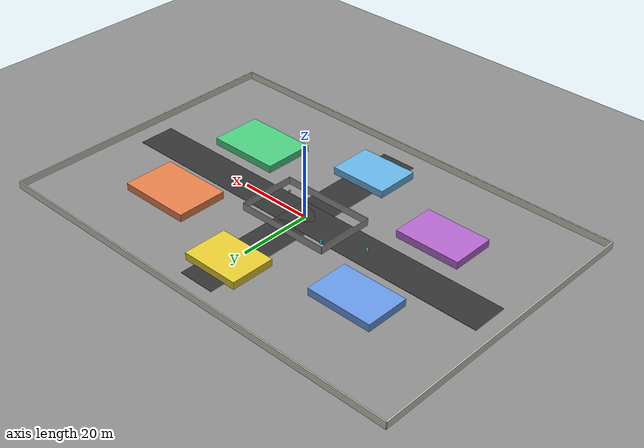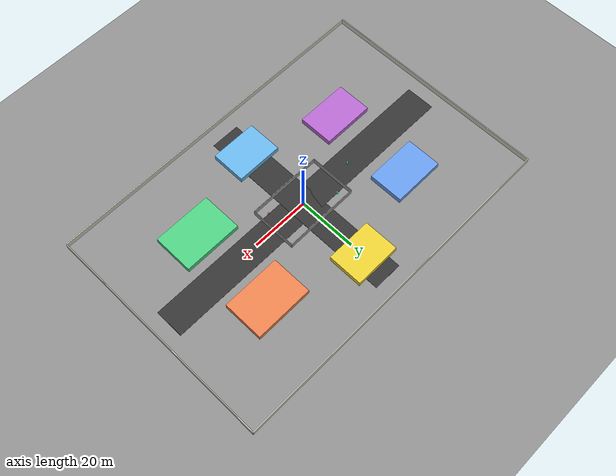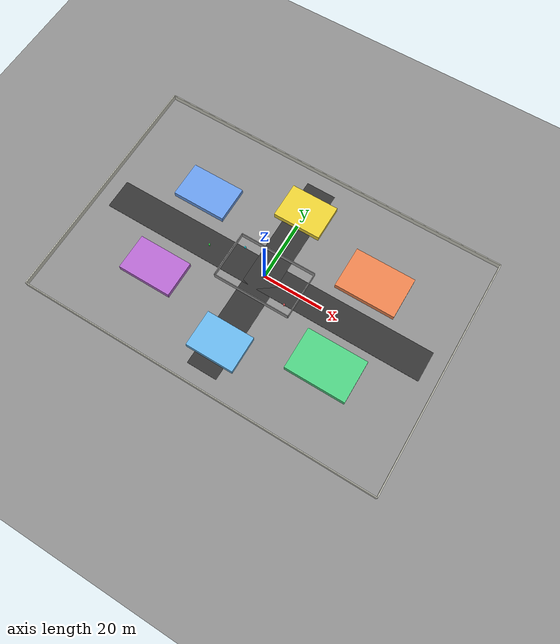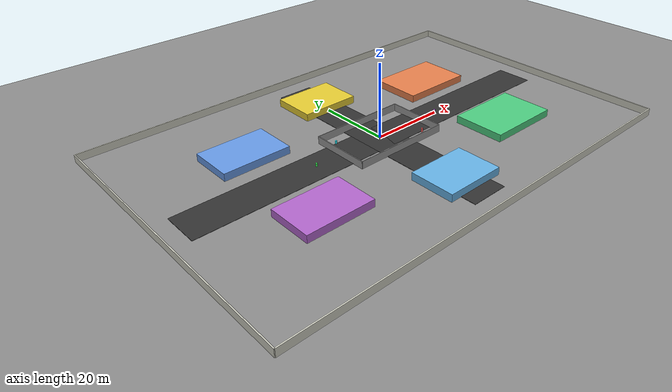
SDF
<?xml version="1.0" ?>
<sdf version="1.6">
  <world name="institute_city">
    <light name="sun" type="directional">
      <pose>0 0 20 0 0 0</pose>
      <diffuse>1 1 1 1</diffuse>
      <specular>0.2 0.2 0.2 1</specular>
      <direction>-0.4 0.1 -1</direction>
    </light>

    <model name="ground_plane">
      <static>true</static>
      <link name="link">
        <collision name="collision">
          <geometry>
            <plane>
              <normal>0 0 1</normal>
              <size>200 200</size>
            </plane>
          </geometry>
        </collision>
        <visual name="visual">
          <geometry>
            <plane>
              <normal>0 0 1</normal>
              <size>200 200</size>
            </plane>
          </geometry>
          <material>
            <ambient>0.55 0.55 0.55 1</ambient>
            <diffuse>0.55 0.55 0.55 1</diffuse>
            <specular>0.1 0.1 0.1 1</specular>
          </material>
        </visual>
      </link>
    </model>

    <!-- Perimeter walls -->
    <model name="perimeter_north">
      <static>true</static>
      <link name="link">
        <pose>0 40 1 0 0 0</pose>
        <collision name="collision">
          <geometry>
            <box>
              <size>120 0.3 2</size>
            </box>
          </geometry>
        </collision>
        <visual name="visual">
          <geometry>
            <box>
              <size>120 0.3 2</size>
            </box>
          </geometry>
          <material>
            <ambient>0.8 0.8 0.75 1</ambient>
            <diffuse>0.8 0.8 0.75 1</diffuse>
            <specular>0.1 0.1 0.1 1</specular>
          </material>
        </visual>
      </link>
    </model>

    <model name="perimeter_south">
      <static>true</static>
      <link name="link">
        <pose>0 -40 1 0 0 0</pose>
        <collision name="collision">
          <geometry>
            <box>
              <size>120 0.3 2</size>
            </box>
          </geometry>
        </collision>
        <visual name="visual">
          <geometry>
            <box>
              <size>120 0.3 2</size>
            </box>
          </geometry>
          <material>
            <ambient>0.8 0.8 0.75 1</ambient>
            <diffuse>0.8 0.8 0.75 1</diffuse>
            <specular>0.1 0.1 0.1 1</specular>
          </material>
        </visual>
      </link>
    </model>

    <model name="perimeter_west">
      <static>true</static>
      <link name="link">
        <pose>-60 0 1 0 0 0</pose>
        <collision name="collision">
          <geometry>
            <box>
              <size>0.3 80 2</size>
            </box>
          </geometry>
        </collision>
        <visual name="visual">
          <geometry>
            <box>
              <size>0.3 80 2</size>
            </box>
          </geometry>
          <material>
            <ambient>0.8 0.8 0.75 1</ambient>
            <diffuse>0.8 0.8 0.75 1</diffuse>
            <specular>0.1 0.1 0.1 1</specular>
          </material>
        </visual>
      </link>
    </model>

    <model name="perimeter_east">
      <static>true</static>
      <link name="link">
        <pose>60 0 1 0 0 0</pose>
        <collision name="collision">
          <geometry>
            <box>
              <size>0.3 80 2</size>
            </box>
          </geometry>
        </collision>
        <visual name="visual">
          <geometry>
            <box>
              <size>0.3 80 2</size>
            </box>
          </geometry>
          <material>
            <ambient>0.8 0.8 0.75 1</ambient>
            <diffuse>0.8 0.8 0.75 1</diffuse>
            <specular>0.1 0.1 0.1 1</specular>
          </material>
        </visual>
      </link>
    </model>

    <!-- Main roads (corridors) -->
    <model name="road_ns_center">
      <static>true</static>
      <link name="link">
        <pose>0 0 0.05 0 0 0</pose>
        <collision name="collision">
          <geometry>
            <box>
              <size>10 70 0.1</size>
            </box>
          </geometry>
        </collision>
        <visual name="visual">
          <geometry>
            <box>
              <size>10 70 0.1</size>
            </box>
          </geometry>
          <material>
            <ambient>0.2 0.2 0.2 1</ambient>
            <diffuse>0.2 0.2 0.2 1</diffuse>
            <specular>0.05 0.05 0.05 1</specular>
          </material>
        </visual>
      </link>
    </model>

    <model name="road_ew_center">
      <static>true</static>
      <link name="link">
        <pose>0 0 0.05 0 0 0</pose>
        <collision name="collision">
          <geometry>
            <box>
              <size>110 10 0.1</size>
            </box>
          </geometry>
        </collision>
        <visual name="visual">
          <geometry>
            <box>
              <size>110 10 0.1</size>
            </box>
          </geometry>
          <material>
            <ambient>0.2 0.2 0.2 1</ambient>
            <diffuse>0.2 0.2 0.2 1</diffuse>
            <specular>0.05 0.05 0.05 1</specular>
          </material>
        </visual>
      </link>
    </model>

    <!-- Institute buildings (blocks) -->
    <model name="admin_block">
      <static>true</static>
      <link name="link">
        <pose>-30 15 1 0 0 0</pose>
        <collision name="collision">
          <geometry>
            <box>
              <size>18 12 2</size>
            </box>
          </geometry>
        </collision>
        <visual name="visual">
          <geometry>
            <box>
              <size>18 12 2</size>
            </box>
          </geometry>
          <material>
            <ambient>0.4 0.6 0.9 1</ambient>
            <diffuse>0.4 0.6 0.9 1</diffuse>
            <specular>0.1 0.1 0.1 1</specular>
          </material>
        </visual>
      </link>
    </model>

    <model name="library">
      <static>true</static>
      <link name="link">
        <pose>-30 -15 1 0 0 0</pose>
        <collision name="collision">
          <geometry>
            <box>
              <size>18 12 2</size>
            </box>
          </geometry>
        </collision>
        <visual name="visual">
          <geometry>
            <box>
              <size>18 12 2</size>
            </box>
          </geometry>
          <material>
            <ambient>0.7 0.4 0.8 1</ambient>
            <diffuse>0.7 0.4 0.8 1</diffuse>
            <specular>0.1 0.1 0.1 1</specular>
          </material>
        </visual>
      </link>
    </model>

    <model name="lab_block">
      <static>true</static>
      <link name="link">
        <pose>30 15 1 0 0 0</pose>
        <collision name="collision">
          <geometry>
            <box>
              <size>20 14 2</size>
            </box>
          </geometry>
        </collision>
        <visual name="visual">
          <geometry>
            <box>
              <size>20 14 2</size>
            </box>
          </geometry>
          <material>
            <ambient>0.9 0.5 0.3 1</ambient>
            <diffuse>0.9 0.5 0.3 1</diffuse>
            <specular>0.1 0.1 0.1 1</specular>
          </material>
        </visual>
      </link>
    </model>

    <model name="hostel">
      <static>true</static>
      <link name="link">
        <pose>30 -15 1 0 0 0</pose>
        <collision name="collision">
          <geometry>
            <box>
              <size>20 14 2</size>
            </box>
          </geometry>
        </collision>
        <visual name="visual">
          <geometry>
            <box>
              <size>20 14 2</size>
            </box>
          </geometry>
          <material>
            <ambient>0.3 0.8 0.5 1</ambient>
            <diffuse>0.3 0.8 0.5 1</diffuse>
            <specular>0.1 0.1 0.1 1</specular>
          </material>
        </visual>
      </link>
    </model>

    <model name="auditorium">
      <static>true</static>
      <link name="link">
        <pose>0 25 1 0 0 0</pose>
        <collision name="collision">
          <geometry>
            <box>
              <size>16 12 2</size>
            </box>
          </geometry>
        </collision>
        <visual name="visual">
          <geometry>
            <box>
              <size>16 12 2</size>
            </box>
          </geometry>
          <material>
            <ambient>0.9 0.8 0.2 1</ambient>
            <diffuse>0.9 0.8 0.2 1</diffuse>
            <specular>0.1 0.1 0.1 1</specular>
          </material>
        </visual>
      </link>
    </model>

    <model name="canteen">
      <static>true</static>
      <link name="link">
        <pose>0 -25 1 0 0 0</pose>
        <collision name="collision">
          <geometry>
            <box>
              <size>16 12 2</size>
            </box>
          </geometry>
        </collision>
        <visual name="visual">
          <geometry>
            <box>
              <size>16 12 2</size>
            </box>
          </geometry>
          <material>
            <ambient>0.4 0.7 0.9 1</ambient>
            <diffuse>0.4 0.7 0.9 1</diffuse>
            <specular>0.1 0.1 0.1 1</specular>
          </material>
        </visual>
      </link>
    </model>

    <!-- Courtyard fence -->
    <model name="courtyard_north">
      <static>true</static>
      <link name="link">
        <pose>0 8 1 0 0 0</pose>
        <collision name="collision">
          <geometry>
            <box>
              <size>26 0.2 2</size>
            </box>
          </geometry>
        </collision>
        <visual name="visual">
          <geometry>
            <box>
              <size>26 0.2 2</size>
            </box>
          </geometry>
          <material>
            <ambient>0.6 0.6 0.6 1</ambient>
            <diffuse>0.6 0.6 0.6 1</diffuse>
            <specular>0.1 0.1 0.1 1</specular>
          </material>
        </visual>
      </link>
    </model>

    <model name="courtyard_south">
      <static>true</static>
      <link name="link">
        <pose>0 -8 1 0 0 0</pose>
        <collision name="collision">
          <geometry>
            <box>
              <size>26 0.2 2</size>
            </box>
          </geometry>
        </collision>
        <visual name="visual">
          <geometry>
            <box>
              <size>26 0.2 2</size>
            </box>
          </geometry>
          <material>
            <ambient>0.6 0.6 0.6 1</ambient>
            <diffuse>0.6 0.6 0.6 1</diffuse>
            <specular>0.1 0.1 0.1 1</specular>
          </material>
        </visual>
      </link>
    </model>

    <model name="courtyard_west">
      <static>true</static>
      <link name="link">
        <pose>-13 0 1 0 0 0</pose>
        <collision name="collision">
          <geometry>
            <box>
              <size>0.2 16 2</size>
            </box>
          </geometry>
        </collision>
        <visual name="visual">
          <geometry>
            <box>
              <size>0.2 16 2</size>
            </box>
          </geometry>
          <material>
            <ambient>0.6 0.6 0.6 1</ambient>
            <diffuse>0.6 0.6 0.6 1</diffuse>
            <specular>0.1 0.1 0.1 1</specular>
          </material>
        </visual>
      </link>
    </model>

    <model name="courtyard_east">
      <static>true</static>
      <link name="link">
        <pose>13 0 1 0 0 0</pose>
        <collision name="collision">
          <geometry>
            <box>
              <size>0.2 16 2</size>
            </box>
          </geometry>
        </collision>
        <visual name="visual">
          <geometry>
            <box>
              <size>0.2 16 2</size>
            </box>
          </geometry>
          <material>
            <ambient>0.6 0.6 0.6 1</ambient>
            <diffuse>0.6 0.6 0.6 1</diffuse>
            <specular>0.1 0.1 0.1 1</specular>
          </material>
        </visual>
      </link>
    </model>

    <!-- Static humans -->
    <model name="human_static_1">
      <static>true</static>
      <pose>-10 5 0 0 0 0</pose>
      <link name="link">
        <collision name="collision">
          <geometry>
            <cylinder>
              <radius>0.25</radius>
              <length>1.7</length>
            </cylinder>
          </geometry>
        </collision>
        <visual name="visual">
          <geometry>
            <cylinder>
              <radius>0.25</radius>
              <length>1.7</length>
            </cylinder>
          </geometry>
          <material>
            <ambient>0.1 0.85 0.9 1</ambient>
            <diffuse>0.1 0.85 0.9 1</diffuse>
            <specular>0.2 0.2 0.2 1</specular>
          </material>
        </visual>
      </link>
    </model>

    <model name="human_static_2">
      <static>true</static>
      <pose>10 -5 0 0 0 0</pose>
      <link name="link">
        <collision name="collision">
          <geometry>
            <cylinder>
              <radius>0.25</radius>
              <length>1.7</length>
            </cylinder>
          </geometry>
        </collision>
        <visual name="visual">
          <geometry>
            <cylinder>
              <radius>0.25</radius>
              <length>1.7</length>
            </cylinder>
          </geometry>
          <material>
            <ambient>0.95 0.35 0.35 1</ambient>
            <diffuse>0.95 0.35 0.35 1</diffuse>
            <specular>0.2 0.2 0.2 1</specular>
          </material>
        </visual>
      </link>
    </model>

    <!-- Moving humans (moved via ROS script) -->
    <model name="human_moving_1">
      <static>false</static>
      <pose>-20 0 0 0 0 0</pose>
      <link name="link">
        <inertial>
          <mass>60.0</mass>
          <inertia>
            <ixx>1</ixx>
            <iyy>1</iyy>
            <izz>1</izz>
          </inertia>
        </inertial>
        <collision name="collision">
          <geometry>
            <cylinder>
              <radius>0.25</radius>
              <length>1.7</length>
            </cylinder>
          </geometry>
        </collision>
        <visual name="visual">
          <geometry>
            <cylinder>
              <radius>0.25</radius>
              <length>1.7</length>
            </cylinder>
          </geometry>
          <material>
            <ambient>0.2 0.9 0.3 1</ambient>
            <diffuse>0.2 0.9 0.3 1</diffuse>
            <specular>0.2 0.2 0.2 1</specular>
          </material>
        </visual>
      </link>
    </model>

    <model name="human_moving_2">
      <static>false</static>
      <pose>20 0 0 0 0 0</pose>
      <link name="link">
        <inertial>
          <mass>60.0</mass>
          <inertia>
            <ixx>1</ixx>
            <iyy>1</iyy>
            <izz>1</izz>
          </inertia>
        </inertial>
        <collision name="collision">
          <geometry>
            <cylinder>
              <radius>0.25</radius>
              <length>1.7</length>
            </cylinder>
          </geometry>
        </collision>
        <visual name="visual">
          <geometry>
            <cylinder>
              <radius>0.25</radius>
              <length>1.7</length>
            </cylinder>
          </geometry>
          <material>
            <ambient>0.8 0.2 1.0 1</ambient>
            <diffuse>0.8 0.2 1.0 1</diffuse>
            <specular>0.2 0.2 0.2 1</specular>
          </material>
        </visual>
      </link>
    </model>
  </world>
</sdf>
